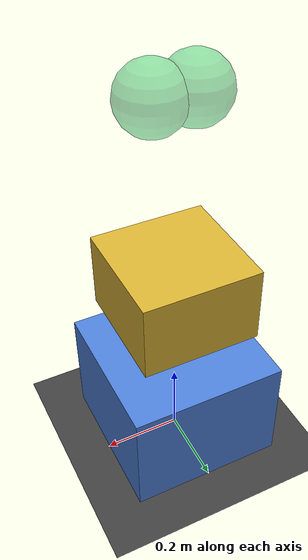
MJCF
<mujoco model="ghost-layers-demo">
  <compiler angle="radian"/>
  <option gravity="0 0 -9.81" timestep="0.002"/>

  <worldbody>
    <geom name="ground" type="plane" size="5 5 0.1"
          contype="1" conaffinity="3" rgba="0.25 0.25 0.25 1"/>

    <!-- Solid layer: contype=1, conaffinity=3 -->
    <body name="solid_a" pos="0 0 0.15">
      <freejoint name="sa_free"/>
      <geom name="sa_geom" type="box" size="0.2 0.2 0.15" mass="2.0"
            contype="1" conaffinity="3" rgba="0.3 0.5 0.85 1"/>
    </body>

    <body name="solid_b" pos="0 0 0.5">
      <freejoint name="sb_free"/>
      <geom name="sb_geom" type="box" size="0.15 0.15 0.1" mass="1.0"
            contype="1" conaffinity="3" rgba="0.85 0.7 0.2 1"/>
    </body>

    <!-- Ghost layer: contype=2, conaffinity=1 -->
    <body name="ghost_a" pos="-0.05 0 1.0">
      <freejoint name="ga_free"/>
      <geom name="ga_geom" type="sphere" size="0.08" mass="0.5"
            contype="2" conaffinity="1" rgba="0.2 0.8 0.4 0.5"/>
    </body>

    <body name="ghost_b" pos="0.05 0 1.0">
      <freejoint name="gb_free"/>
      <geom name="gb_geom" type="sphere" size="0.08" mass="0.5"
            contype="2" conaffinity="1" rgba="0.2 0.8 0.4 0.5"/>
    </body>
  </worldbody>
</mujoco>
